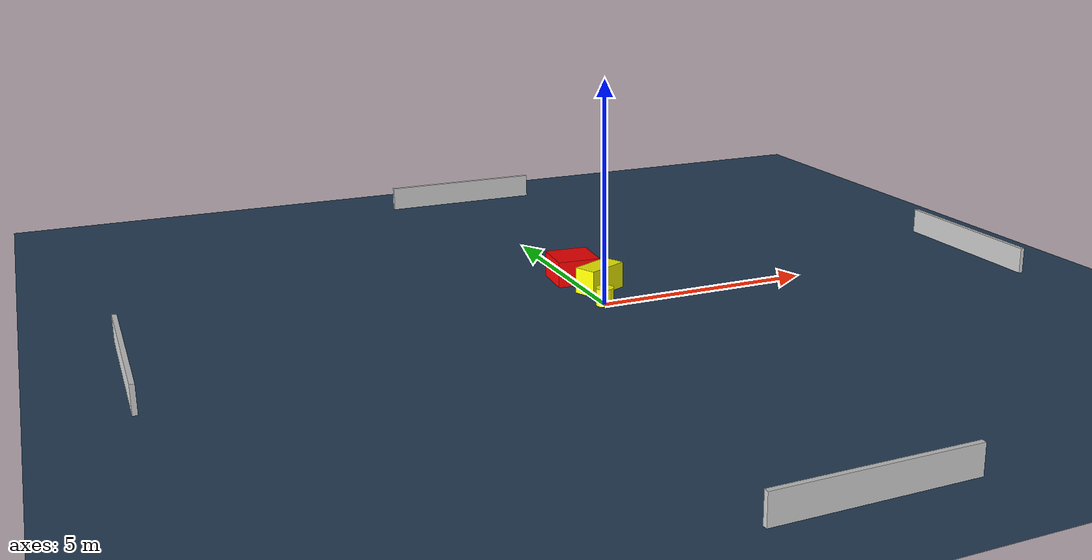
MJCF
<?xml version="1.0" ?>
<mujoco model="generated_environment">
  <option timestep="0.01" integrator="RK4" cone="elliptic"/>
  <default>
    <geom density="1"/>
  </default>
  <asset>
    <texture builtin="gradient" height="3072" name="skybox" rgb1="0.3 0.5 0.7" rgb2="0 0 0" type="skybox" width="512"/>
    <texture builtin="checker" height="300" name="groundplane" rgb1="0.2 0.3 0.4" rgb2="0.1 0.2 0.3" type="2d" width="300"/>
    <material name="groundplane" reflectance="0.2" texrepeat="5 5" texture="groundplane"/>
  </asset>
  <worldbody>
    <light dir="0 0 -1" directional="true" pos="0 0 1.5"/>
    <geom condim="3" friction="0.5 0.005 0.001" material="groundplane" name="floor" pos="0 0 0" size="0 0 0.05" type="plane"/>
    <body name="walls">
      <geom name="wall_1" condim="4" pos="-10.0 0.0 0.3" rgba="0.800000011920929 0.800000011920929 0.800000011920929 1.0" size="0.05 2.0 0.3" type="box"/>
      <geom name="wall_2" condim="4" pos="10.0 0.0 0.3" rgba="0.800000011920929 0.800000011920929 0.800000011920929 1.0" size="0.05 2.0 0.3" type="box"/>
      <geom name="wall_3" condim="4" pos="0.0 -10.0 0.3" rgba="0.800000011920929 0.800000011920929 0.800000011920929 1.0" size="2.0 0.05 0.3" type="box"/>
      <geom name="wall_4" condim="4" pos="0.0 10.0 0.3" rgba="0.800000011920929 0.800000011920929 0.800000011920929 1.0" size="2.0 0.05 0.3" type="box"/>
    </body>
    <body name="robot">
      <joint name="joint_x" type="slide" pos="0 0 0" axis="1 0 0"/>
      <joint name="joint_y" type="slide" pos="0 0 0" axis="0 1 0"/>
      <geom name="robot" type="cylinder" pos="0.0 0.0 0.2" size="0.2 0.2 0.0" mass="5.0" friction="1.0 0.005 0.0001" condim="4" rgba="1.0 1.0 0.0 1.0"/>
    </body>
    <body name="obstacle_1_movable">
      <geom name="obstacle_1_movable" condim="4" pos="0.3171923319563418 0.9927853038481942 0.3" euler="0 0 115.08462681539001" friction="0.0 0.005 0.001" rgba="1.0 1.0 0.0 1.0" size="0.26504994193291836 0.5100485701654032 0.3" type="box" mass="0.1"/>
      <joint type="free"/>
    </body>
    <body name="obstacle_2_static">
      <geom name="obstacle_2_static" condim="4" pos="0.06505305721393795 1.9690878368095668 0.3" euler="0 0 355.9888697225637" friction="0.0 0.005 0.001" rgba="1.0 0.0 0.0 1.0" size="0.4977328463799812 0.4948648921560484 0.3" type="box"/>
    </body>
  </worldbody>
  <actuator>
    <motor name="actuator_x" joint="joint_x" gear="1" ctrlrange="-1 1"/>
    <motor name="actuator_y" joint="joint_y" gear="1" ctrlrange="-1 1"/>
  </actuator>
</mujoco>
